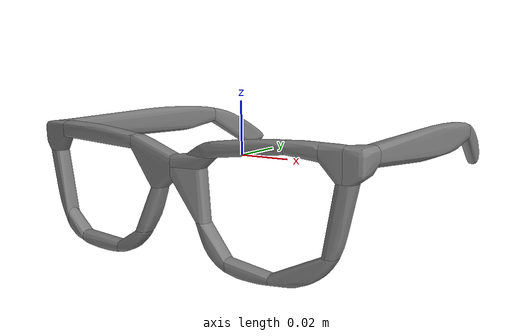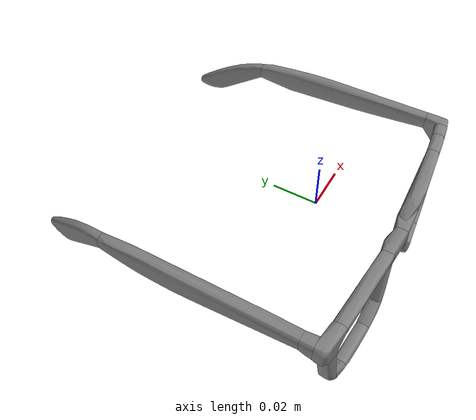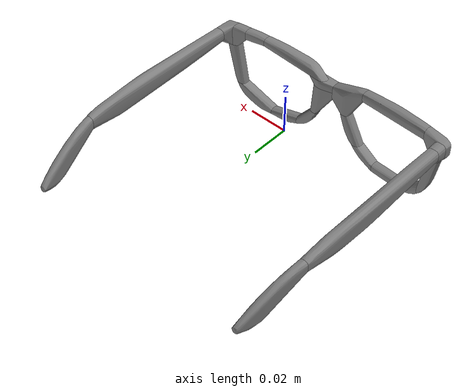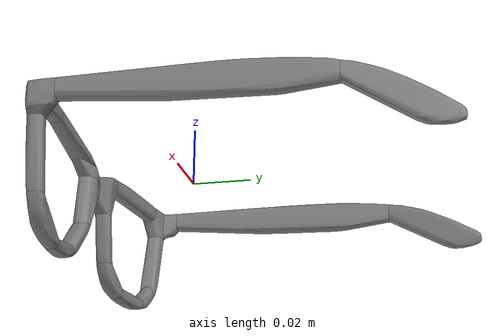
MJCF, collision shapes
<mujoco model="eyeglasses">
  <compiler meshdir="."/>

  <asset>
    <mesh name="eyeglasses" file="eyeglasses.stl"/>
    <mesh name="eyeglasses_collision_hull_000" file="eyeglasses_collision_hull_000.stl"/>
    <mesh name="eyeglasses_collision_hull_001" file="eyeglasses_collision_hull_001.stl"/>
    <mesh name="eyeglasses_collision_hull_002" file="eyeglasses_collision_hull_002.stl"/>
    <mesh name="eyeglasses_collision_hull_003" file="eyeglasses_collision_hull_003.stl"/>
    <mesh name="eyeglasses_collision_hull_004" file="eyeglasses_collision_hull_004.stl"/>
    <mesh name="eyeglasses_collision_hull_005" file="eyeglasses_collision_hull_005.stl"/>
    <mesh name="eyeglasses_collision_hull_006" file="eyeglasses_collision_hull_006.stl"/>
    <mesh name="eyeglasses_collision_hull_007" file="eyeglasses_collision_hull_007.stl"/>
    <mesh name="eyeglasses_collision_hull_008" file="eyeglasses_collision_hull_008.stl"/>
    <mesh name="eyeglasses_collision_hull_009" file="eyeglasses_collision_hull_009.stl"/>
    <mesh name="eyeglasses_collision_hull_010" file="eyeglasses_collision_hull_010.stl"/>
    <mesh name="eyeglasses_collision_hull_011" file="eyeglasses_collision_hull_011.stl"/>
    <mesh name="eyeglasses_collision_hull_012" file="eyeglasses_collision_hull_012.stl"/>
    <mesh name="eyeglasses_collision_hull_013" file="eyeglasses_collision_hull_013.stl"/>
    <mesh name="eyeglasses_collision_hull_014" file="eyeglasses_collision_hull_014.stl"/>
    <mesh name="eyeglasses_collision_hull_015" file="eyeglasses_collision_hull_015.stl"/>
    <mesh name="eyeglasses_collision_hull_016" file="eyeglasses_collision_hull_016.stl"/>
    <mesh name="eyeglasses_collision_hull_017" file="eyeglasses_collision_hull_017.stl"/>
    <mesh name="eyeglasses_collision_hull_018" file="eyeglasses_collision_hull_018.stl"/>
    <mesh name="eyeglasses_collision_hull_019" file="eyeglasses_collision_hull_019.stl"/>
    <mesh name="eyeglasses_collision_hull_020" file="eyeglasses_collision_hull_020.stl"/>
    <mesh name="eyeglasses_collision_hull_021" file="eyeglasses_collision_hull_021.stl"/>
    <mesh name="eyeglasses_collision_hull_022" file="eyeglasses_collision_hull_022.stl"/>
  </asset>

  <worldbody>
    <body name="object">
      <freejoint name="object_joint"/>
      <geom name="object_visual" type="mesh" mesh="eyeglasses"
            contype="0" conaffinity="0" group="2" rgba="0.9 0.9 0.8 1" mass="0"/>
      <geom name="eyeglasses_collision_hull_000_collision" type="mesh" mesh="eyeglasses_collision_hull_000"
            mass="0.0022" condim="6" friction="1.0 0.002 0.002" priority="1"/>
      <geom name="eyeglasses_collision_hull_001_collision" type="mesh" mesh="eyeglasses_collision_hull_001"
            mass="0.0022" condim="6" friction="1.0 0.002 0.002" priority="1"/>
      <geom name="eyeglasses_collision_hull_002_collision" type="mesh" mesh="eyeglasses_collision_hull_002"
            mass="0.0022" condim="6" friction="1.0 0.002 0.002" priority="1"/>
      <geom name="eyeglasses_collision_hull_003_collision" type="mesh" mesh="eyeglasses_collision_hull_003"
            mass="0.0022" condim="6" friction="1.0 0.002 0.002" priority="1"/>
      <geom name="eyeglasses_collision_hull_004_collision" type="mesh" mesh="eyeglasses_collision_hull_004"
            mass="0.0022" condim="6" friction="1.0 0.002 0.002" priority="1"/>
      <geom name="eyeglasses_collision_hull_005_collision" type="mesh" mesh="eyeglasses_collision_hull_005"
            mass="0.0022" condim="6" friction="1.0 0.002 0.002" priority="1"/>
      <geom name="eyeglasses_collision_hull_006_collision" type="mesh" mesh="eyeglasses_collision_hull_006"
            mass="0.0022" condim="6" friction="1.0 0.002 0.002" priority="1"/>
      <geom name="eyeglasses_collision_hull_007_collision" type="mesh" mesh="eyeglasses_collision_hull_007"
            mass="0.0022" condim="6" friction="1.0 0.002 0.002" priority="1"/>
      <geom name="eyeglasses_collision_hull_008_collision" type="mesh" mesh="eyeglasses_collision_hull_008"
            mass="0.0022" condim="6" friction="1.0 0.002 0.002" priority="1"/>
      <geom name="eyeglasses_collision_hull_009_collision" type="mesh" mesh="eyeglasses_collision_hull_009"
            mass="0.0022" condim="6" friction="1.0 0.002 0.002" priority="1"/>
      <geom name="eyeglasses_collision_hull_010_collision" type="mesh" mesh="eyeglasses_collision_hull_010"
            mass="0.0022" condim="6" friction="1.0 0.002 0.002" priority="1"/>
      <geom name="eyeglasses_collision_hull_011_collision" type="mesh" mesh="eyeglasses_collision_hull_011"
            mass="0.0022" condim="6" friction="1.0 0.002 0.002" priority="1"/>
      <geom name="eyeglasses_collision_hull_012_collision" type="mesh" mesh="eyeglasses_collision_hull_012"
            mass="0.0022" condim="6" friction="1.0 0.002 0.002" priority="1"/>
      <geom name="eyeglasses_collision_hull_013_collision" type="mesh" mesh="eyeglasses_collision_hull_013"
            mass="0.0022" condim="6" friction="1.0 0.002 0.002" priority="1"/>
      <geom name="eyeglasses_collision_hull_014_collision" type="mesh" mesh="eyeglasses_collision_hull_014"
            mass="0.0022" condim="6" friction="1.0 0.002 0.002" priority="1"/>
      <geom name="eyeglasses_collision_hull_015_collision" type="mesh" mesh="eyeglasses_collision_hull_015"
            mass="0.0022" condim="6" friction="1.0 0.002 0.002" priority="1"/>
      <geom name="eyeglasses_collision_hull_016_collision" type="mesh" mesh="eyeglasses_collision_hull_016"
            mass="0.0022" condim="6" friction="1.0 0.002 0.002" priority="1"/>
      <geom name="eyeglasses_collision_hull_017_collision" type="mesh" mesh="eyeglasses_collision_hull_017"
            mass="0.0022" condim="6" friction="1.0 0.002 0.002" priority="1"/>
      <geom name="eyeglasses_collision_hull_018_collision" type="mesh" mesh="eyeglasses_collision_hull_018"
            mass="0.0022" condim="6" friction="1.0 0.002 0.002" priority="1"/>
      <geom name="eyeglasses_collision_hull_019_collision" type="mesh" mesh="eyeglasses_collision_hull_019"
            mass="0.0022" condim="6" friction="1.0 0.002 0.002" priority="1"/>
      <geom name="eyeglasses_collision_hull_020_collision" type="mesh" mesh="eyeglasses_collision_hull_020"
            mass="0.0022" condim="6" friction="1.0 0.002 0.002" priority="1"/>
      <geom name="eyeglasses_collision_hull_021_collision" type="mesh" mesh="eyeglasses_collision_hull_021"
            mass="0.0022" condim="6" friction="1.0 0.002 0.002" priority="1"/>
      <geom name="eyeglasses_collision_hull_022_collision" type="mesh" mesh="eyeglasses_collision_hull_022"
            mass="0.0022" condim="6" friction="1.0 0.002 0.002" priority="1"/>
    </body>
  </worldbody>
</mujoco>
